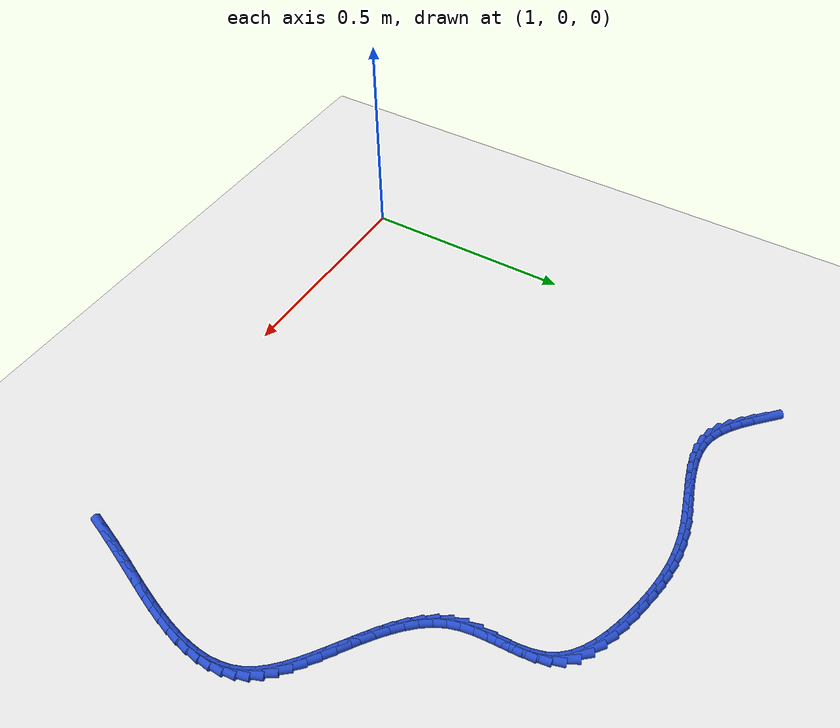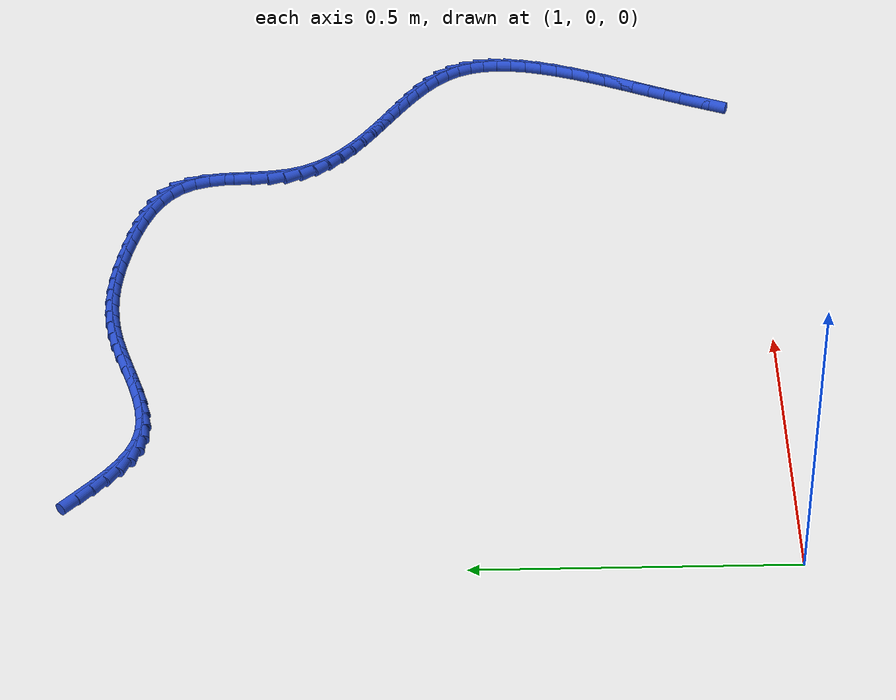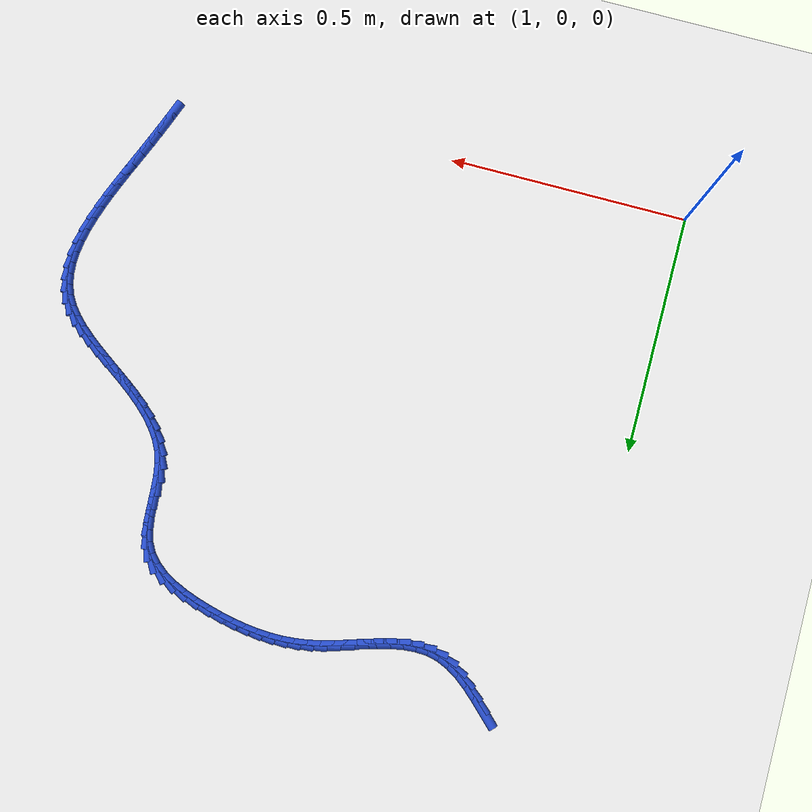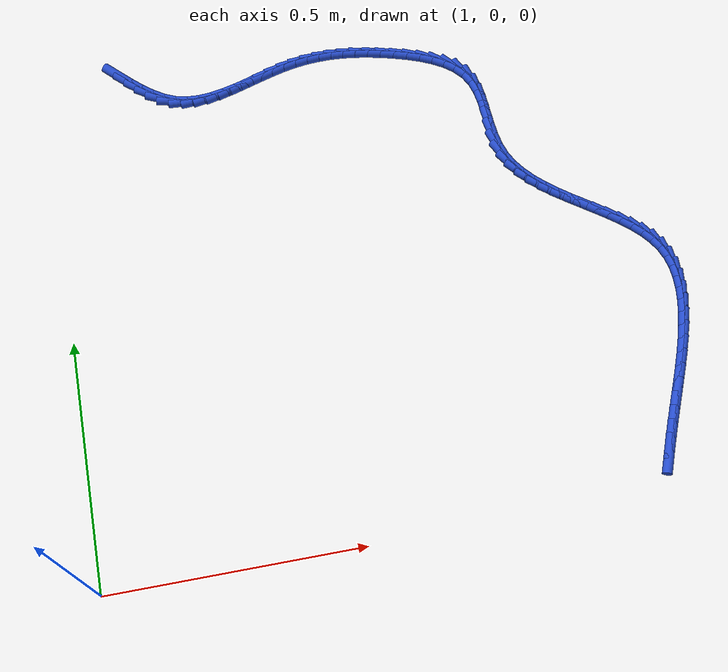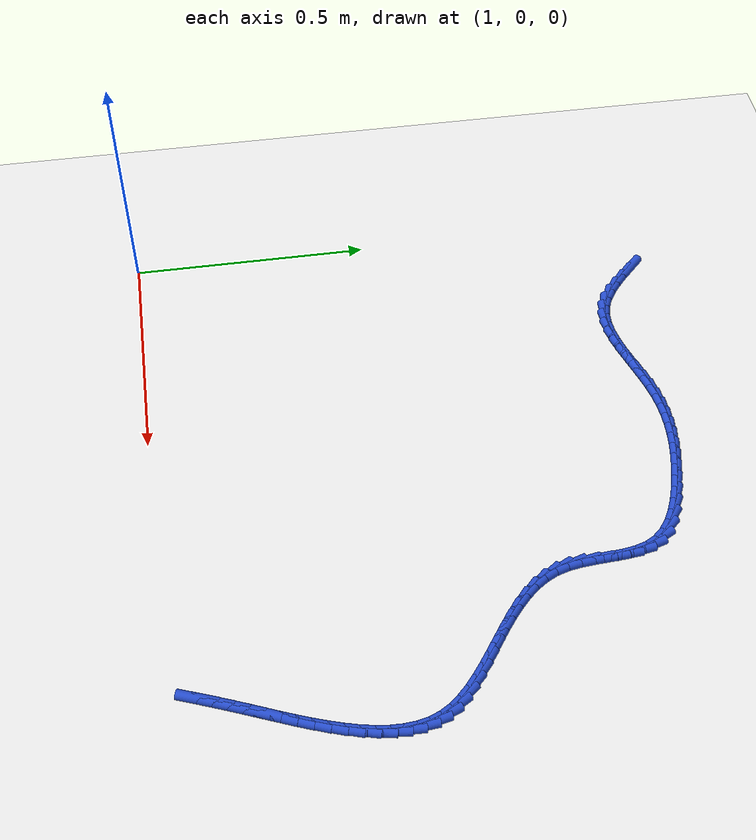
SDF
<sdf version="1.6">
 <world name="default">
  <model name="ground_plane">
   <static>1</static>
   <link name="link">
    <collision name="collision">
     <geometry><plane><normal>0 0 1</normal><size>100 100</size></plane></geometry>
     <surface><friction><ode><mu>100</mu><mu2>50</mu2></ode></friction></surface>
    </collision>
    <visual name="visual">
     <cast_shadows>0</cast_shadows>
     <geometry><plane><normal>0 0 1</normal><size>100 100</size></plane></geometry>
     <material>
      <script><uri>file://media/materials/scripts/gazebo.material</uri><name>Gazebo/WhiteGlow</name></script>
     </material>
    </visual>
   </link>
  </model>
  <model name="line">
   <link name="link_71">
    <pose>1.1596035465163999 1.0799152232436162 0.01 0 1.57 -0.7728892330218509</pose>
    <collision name="collision">
     <geometry><cylinder><radius>0.01</radius><length>0.08</length></cylinder></geometry>
    </collision>
    <visual name="visual">
     <material>
      <script><name>Gazebo/Blue</name><uri>file://media/materials/scripts/gazebo.material</uri></script>
     </material>
     <geometry><cylinder><radius>0.01</radius><length>0.08</length></cylinder></geometry>
    </visual>
   </link>
   <link name="link_72">
    <pose>1.1805757002998476 1.0594612924969344 0.01 0 1.57 -0.7315989505844263</pose>
    <collision name="collision">
     <geometry><cylinder><radius>0.01</radius><length>0.08</length></cylinder></geometry>
    </collision>
    <visual name="visual">
     <material>
      <script><name>Gazebo/Blue</name><uri>file://media/materials/scripts/gazebo.material</uri></script>
     </material>
     <geometry><cylinder><radius>0.01</radius><length>0.08</length></cylinder></geometry>
    </visual>
   </link>
   <link name="link_73">
    <pose>1.2019349450047725 1.040284937569167 0.01 0 1.57 -0.6611452579742935</pose>
    <collision name="collision">
     <geometry><cylinder><radius>0.01</radius><length>0.08</length></cylinder></geometry>
    </collision>
    <visual name="visual">
     <material>
      <script><name>Gazebo/Blue</name><uri>file://media/materials/scripts/gazebo.material</uri></script>
     </material>
     <geometry><cylinder><radius>0.01</radius><length>0.08</length></cylinder></geometry>
    </visual>
   </link>
   <link name="link_74">
    <pose>1.2238110523592876 1.0232666027909951 0.01 0 1.57 -0.5555013474234652</pose>
    <collision name="collision">
     <geometry><cylinder><radius>0.01</radius><length>0.08</length></cylinder></geometry>
    </collision>
    <visual name="visual">
     <material>
      <script><name>Gazebo/Blue</name><uri>file://media/materials/scripts/gazebo.material</uri></script>
     </material>
     <geometry><cylinder><radius>0.01</radius><length>0.08</length></cylinder></geometry>
    </visual>
   </link>
   <link name="link_75">
    <pose>1.2463337940915062 1.0092867324931012 0.01 0 1.57 -0.4076302693548033</pose>
    <collision name="collision">
     <geometry><cylinder><radius>0.01</radius><length>0.08</length></cylinder></geometry>
    </collision>
    <visual name="visual">
     <material>
      <script><name>Gazebo/Blue</name><uri>file://media/materials/scripts/gazebo.material</uri></script>
     </material>
     <geometry><cylinder><radius>0.01</radius><length>0.08</length></cylinder></geometry>
    </visual>
   </link>
   <link name="link_76">
    <pose>1.2696329419295425 0.999225771006166 0.01 0 1.57 -0.22384029612993786</pose>
    <collision name="collision">
     <geometry><cylinder><radius>0.01</radius><length>0.08</length></cylinder></geometry>
    </collision>
    <visual name="visual">
     <material>
      <script><name>Gazebo/Blue</name><uri>file://media/materials/scripts/gazebo.material</uri></script>
     </material>
     <geometry><cylinder><radius>0.01</radius><length>0.08</length></cylinder></geometry>
    </visual>
   </link>
   <link name="link_77">
    <pose>1.2937994920559432 0.993724129242127 0.01 0 1.57 -0.05482034959960243</pose>
    <collision name="collision">
     <geometry><cylinder><radius>0.01</radius><length>0.08</length></cylinder></geometry>
    </collision>
    <visual name="visual">
     <material>
      <script><name>Gazebo/Blue</name><uri>file://media/materials/scripts/gazebo.material</uri></script>
     </material>
     <geometry><cylinder><radius>0.01</radius><length>0.08</length></cylinder></geometry>
    </visual>
   </link>
   <link name="link_78">
    <pose>1.3187520157709394 0.9923548512100507 0.01 0 1.57 0.07947375037839503</pose>
    <collision name="collision">
     <geometry><cylinder><radius>0.01</radius><length>0.08</length></cylinder></geometry>
    </collision>
    <visual name="visual">
     <material>
      <script><name>Gazebo/Blue</name><uri>file://media/materials/scripts/gazebo.material</uri></script>
     </material>
     <geometry><cylinder><radius>0.01</radius><length>0.08</length></cylinder></geometry>
    </visual>
   </link>
   <link name="link_79">
    <pose>1.3443611744847401 0.9943944028947326 0.01 0 1.57 0.17884419373918514</pose>
    <collision name="collision">
     <geometry><cylinder><radius>0.01</radius><length>0.08</length></cylinder></geometry>
    </collision>
    <visual name="visual">
     <material>
      <script><name>Gazebo/Blue</name><uri>file://media/materials/scripts/gazebo.material</uri></script>
     </material>
     <geometry><cylinder><radius>0.01</radius><length>0.08</length></cylinder></geometry>
    </visual>
   </link>
   <link name="link_80">
    <pose>1.370497627713266 0.9991192385547151 0.01 0 1.57 0.24685670047625724</pose>
    <collision name="collision">
     <geometry><cylinder><radius>0.01</radius><length>0.08</length></cylinder></geometry>
    </collision>
    <visual name="visual">
     <material>
      <script><name>Gazebo/Blue</name><uri>file://media/materials/scripts/gazebo.material</uri></script>
     </material>
     <geometry><cylinder><radius>0.01</radius><length>0.08</length></cylinder></geometry>
    </visual>
   </link>
   <link name="link_81">
    <pose>1.3970320349724406 1.0058058124485414 0.01 0 1.57 0.2874767585499627</pose>
    <collision name="collision">
     <geometry><cylinder><radius>0.01</radius><length>0.08</length></cylinder></geometry>
    </collision>
    <visual name="visual">
     <material>
      <script><name>Gazebo/Blue</name><uri>file://media/materials/scripts/gazebo.material</uri></script>
     </material>
     <geometry><cylinder><radius>0.01</radius><length>0.08</length></cylinder></geometry>
    </visual>
   </link>
   <link name="link_82">
    <pose>1.4238350557781856 1.0137305788347548 0.01 0 1.57 0.3035591943710451</pose>
    <collision name="collision">
     <geometry><cylinder><radius>0.01</radius><length>0.08</length></cylinder></geometry>
    </collision>
    <visual name="visual">
     <material>
      <script><name>Gazebo/Blue</name><uri>file://media/materials/scripts/gazebo.material</uri></script>
     </material>
     <geometry><cylinder><radius>0.01</radius><length>0.08</length></cylinder></geometry>
    </visual>
   </link>
   <link name="link_83">
    <pose>1.4507773496464227 1.0221699919718983 0.01 0 1.57 0.29637991633687394</pose>
    <collision name="collision">
     <geometry><cylinder><radius>0.01</radius><length>0.08</length></cylinder></geometry>
    </collision>
    <visual name="visual">
     <material>
      <script><name>Gazebo/Blue</name><uri>file://media/materials/scripts/gazebo.material</uri></script>
     </material>
     <geometry><cylinder><radius>0.01</radius><length>0.08</length></cylinder></geometry>
    </visual>
   </link>
   <link name="link_84">
    <pose>1.4777295760930742 1.0304005061185146 0.01 0 1.57 0.26555913505143963</pose>
    <collision name="collision">
     <geometry><cylinder><radius>0.01</radius><length>0.08</length></cylinder></geometry>
    </collision>
    <visual name="visual">
     <material>
      <script><name>Gazebo/Blue</name><uri>file://media/materials/scripts/gazebo.material</uri></script>
     </material>
     <geometry><cylinder><radius>0.01</radius><length>0.08</length></cylinder></geometry>
    </visual>
   </link>
   <link name="link_85">
    <pose>1.5045623946340627 1.0376985755331474 0.01 0 1.57 0.20981260428648027</pose>
    <collision name="collision">
     <geometry><cylinder><radius>0.01</radius><length>0.08</length></cylinder></geometry>
    </collision>
    <visual name="visual">
     <material>
      <script><name>Gazebo/Blue</name><uri>file://media/materials/scripts/gazebo.material</uri></script>
     </material>
     <geometry><cylinder><radius>0.01</radius><length>0.08</length></cylinder></geometry>
    </visual>
   </link>
   <link name="link_86">
    <pose>1.5311520467309785 1.0433607500310171 0.01 0 1.57 0.14076265798279575</pose>
    <collision name="collision">
     <geometry><cylinder><radius>0.01</radius><length>0.08</length></cylinder></geometry>
    </collision>
    <visual name="visual">
     <material>
      <script><name>Gazebo/Blue</name><uri>file://media/materials/scripts/gazebo.material</uri></script>
     </material>
     <geometry><cylinder><radius>0.01</radius><length>0.08</length></cylinder></geometry>
    </visual>
   </link>
   <link name="link_87">
    <pose>1.557488388645365 1.0470926039480715 0.01 0 1.57 0.07201765194126834</pose>
    <collision name="collision">
     <geometry><cylinder><radius>0.01</radius><length>0.08</length></cylinder></geometry>
    </collision>
    <visual name="visual">
     <material>
      <script><name>Gazebo/Blue</name><uri>file://media/materials/scripts/gazebo.material</uri></script>
     </material>
     <geometry><cylinder><radius>0.01</radius><length>0.08</length></cylinder></geometry>
    </visual>
   </link>
   <link name="link_88">
    <pose>1.5836672454958307 1.0489812099901223 0.01 0 1.57 0.00562803404771542</pose>
    <collision name="collision">
     <geometry><cylinder><radius>0.01</radius><length>0.08</length></cylinder></geometry>
    </collision>
    <visual name="visual">
     <material>
      <script><name>Gazebo/Blue</name><uri>file://media/materials/scripts/gazebo.material</uri></script>
     </material>
     <geometry><cylinder><radius>0.01</radius><length>0.08</length></cylinder></geometry>
    </visual>
   </link>
   <link name="link_89">
    <pose>1.609788492830979 1.0491282228116956 0.01 0 1.57 -0.05699955353170119</pose>
    <collision name="collision">
     <geometry><cylinder><radius>0.01</radius><length>0.08</length></cylinder></geometry>
    </collision>
    <visual name="visual">
     <material>
      <script><name>Gazebo/Blue</name><uri>file://media/materials/scripts/gazebo.material</uri></script>
     </material>
     <geometry><cylinder><radius>0.01</radius><length>0.08</length></cylinder></geometry>
    </visual>
   </link>
   <link name="link_90">
    <pose>1.6359520061994104 1.047635297067317 0.01 0 1.57 -0.1147243577846275</pose>
    <collision name="collision">
     <geometry><cylinder><radius>0.01</radius><length>0.08</length></cylinder></geometry>
    </collision>
    <visual name="visual">
     <material>
      <script><name>Gazebo/Blue</name><uri>file://media/materials/scripts/gazebo.material</uri></script>
     </material>
     <geometry><cylinder><radius>0.01</radius><length>0.08</length></cylinder></geometry>
    </visual>
   </link>
   <link name="link_91">
    <pose>1.6622576611497266 1.044604087411512 0.01 0 1.57 -0.1667325250290208</pose>
    <collision name="collision">
     <geometry><cylinder><radius>0.01</radius><length>0.08</length></cylinder></geometry>
    </collision>
    <visual name="visual">
     <material>
      <script><name>Gazebo/Blue</name><uri>file://media/materials/scripts/gazebo.material</uri></script>
     </material>
     <geometry><cylinder><radius>0.01</radius><length>0.08</length></cylinder></geometry>
    </visual>
   </link>
   <link name="link_92">
    <pose>1.68880533323053 1.0401362484988053 0.01 0 1.57 -0.21254230273241775</pose>
    <collision name="collision">
     <geometry><cylinder><radius>0.01</radius><length>0.08</length></cylinder></geometry>
    </collision>
    <visual name="visual">
     <material>
      <script><name>Gazebo/Blue</name><uri>file://media/materials/scripts/gazebo.material</uri></script>
     </material>
     <geometry><cylinder><radius>0.01</radius><length>0.08</length></cylinder></geometry>
    </visual>
   </link>
   <link name="link_93">
    <pose>1.7156948979904216 1.0343334349837234 0.01 0 1.57 -0.25197572569699056</pose>
    <collision name="collision">
     <geometry><cylinder><radius>0.01</radius><length>0.08</length></cylinder></geometry>
    </collision>
    <visual name="visual">
     <material>
      <script><name>Gazebo/Blue</name><uri>file://media/materials/scripts/gazebo.material</uri></script>
     </material>
     <geometry><cylinder><radius>0.01</radius><length>0.08</length></cylinder></geometry>
    </visual>
   </link>
   <link name="link_94">
    <pose>1.743025850785307 1.0272971487425833 0.01 0 1.57 -0.2905792408238071</pose>
    <collision name="collision">
     <geometry><cylinder><radius>0.01</radius><length>0.08</length></cylinder></geometry>
    </collision>
    <visual name="visual">
     <material>
      <script><name>Gazebo/Blue</name><uri>file://media/materials/scripts/gazebo.material</uri></script>
     </material>
     <geometry><cylinder><radius>0.01</radius><length>0.08</length></cylinder></geometry>
    </visual>
   </link>
   <link name="link_95">
    <pose>1.7706599307767141 1.0190333507176637 0.01 0 1.57 -0.34451122741910034</pose>
    <collision name="collision">
     <geometry><cylinder><radius>0.01</radius><length>0.08</length></cylinder></geometry>
    </collision>
    <visual name="visual">
     <material>
      <script><name>Gazebo/Blue</name><uri>file://media/materials/scripts/gazebo.material</uri></script>
     </material>
     <geometry><cylinder><radius>0.01</radius><length>0.08</length></cylinder></geometry>
    </visual>
   </link>
   <link name="link_96">
    <pose>1.7978153747262338 1.0092894141811874 0.01 0 1.57 -0.42013415618712924</pose>
    <collision name="collision">
     <geometry><cylinder><radius>0.01</radius><length>0.08</length></cylinder></geometry>
    </collision>
    <visual name="visual">
     <material>
      <script><name>Gazebo/Blue</name><uri>file://media/materials/scripts/gazebo.material</uri></script>
     </material>
     <geometry><cylinder><radius>0.01</radius><length>0.08</length></cylinder></geometry>
    </visual>
   </link>
   <link name="link_97">
    <pose>1.8236026139418549 0.9977693914153236 0.01 0 1.57 -0.5238318553023523</pose>
    <collision name="collision">
     <geometry><cylinder><radius>0.01</radius><length>0.08</length></cylinder></geometry>
    </collision>
    <visual name="visual">
     <material>
      <script><name>Gazebo/Blue</name><uri>file://media/materials/scripts/gazebo.material</uri></script>
     </material>
     <geometry><cylinder><radius>0.01</radius><length>0.08</length></cylinder></geometry>
    </visual>
   </link>
   <link name="link_98">
    <pose>1.847132079731566 0.9841773347022414 0.01 0 1.57 -0.6643142024586263</pose>
    <collision name="collision">
     <geometry><cylinder><radius>0.01</radius><length>0.08</length></cylinder></geometry>
    </collision>
    <visual name="visual">
     <material>
      <script><name>Gazebo/Blue</name><uri>file://media/materials/scripts/gazebo.material</uri></script>
     </material>
     <geometry><cylinder><radius>0.01</radius><length>0.08</length></cylinder></geometry>
    </visual>
   </link>
   <link name="link_99">
    <pose>1.8675142034033558 0.96821729632411 0.01 0 1.57 -0.8504708223785802</pose>
    <collision name="collision">
     <geometry><cylinder><radius>0.01</radius><length>0.08</length></cylinder></geometry>
    </collision>
    <visual name="visual">
     <material>
      <script><name>Gazebo/Blue</name><uri>file://media/materials/scripts/gazebo.material</uri></script>
     </material>
     <geometry><cylinder><radius>0.01</radius><length>0.08</length></cylinder></geometry>
    </visual>
   </link>
   <link name="link_100">
    <pose>1.8838594162652127 0.9495933285630989 0.01 0 1.57 -1.0804134193918378</pose>
    <collision name="collision">
     <geometry><cylinder><radius>0.01</radius><length>0.08</length></cylinder></geometry>
    </collision>
    <visual name="visual">
     <material>
      <script><name>Gazebo/Blue</name><uri>file://media/materials/scripts/gazebo.material</uri></script>
     </material>
     <geometry><cylinder><radius>0.01</radius><length>0.08</length></cylinder></geometry>
    </visual>
   </link>
   <link name="link_101">
    <pose>1.8953620985737634 0.9280478870614517 0.01 0 1.57 -1.2867379276329156</pose>
    <collision name="collision">
     <geometry><cylinder><radius>0.01</radius><length>0.08</length></cylinder></geometry>
    </collision>
    <visual name="visual">
     <material>
      <script><name>Gazebo/Blue</name><uri>file://media/materials/scripts/gazebo.material</uri></script>
     </material>
     <geometry><cylinder><radius>0.01</radius><length>0.08</length></cylinder></geometry>
    </visual>
   </link>
   <link name="link_102">
    <pose>1.9024197983233595 0.9038738296357295 0.01 0 1.57 -1.422079471506025</pose>
    <collision name="collision">
     <geometry><cylinder><radius>0.01</radius><length>0.08</length></cylinder></geometry>
    </collision>
    <visual name="visual">
     <material>
      <script><name>Gazebo/Blue</name><uri>file://media/materials/scripts/gazebo.material</uri></script>
     </material>
     <geometry><cylinder><radius>0.01</radius><length>0.08</length></cylinder></geometry>
    </visual>
   </link>
   <link name="link_103">
    <pose>1.906329905370746 0.8777756565543904 0.01 0 1.57 -1.4947171324096313</pose>
    <collision name="collision">
     <geometry><cylinder><radius>0.01</radius><length>0.08</length></cylinder></geometry>
    </collision>
    <visual name="visual">
     <material>
      <script><name>Gazebo/Blue</name><uri>file://media/materials/scripts/gazebo.material</uri></script>
     </material>
     <geometry><cylinder><radius>0.01</radius><length>0.08</length></cylinder></geometry>
    </visual>
   </link>
   <link name="link_104">
    <pose>1.9084114840088762 0.8504677832925953 0.01 0 1.57 -1.514312015336763</pose>
    <collision name="collision">
     <geometry><cylinder><radius>0.01</radius><length>0.08</length></cylinder></geometry>
    </collision>
    <visual name="visual">
     <material>
      <script><name>Gazebo/Blue</name><uri>file://media/materials/scripts/gazebo.material</uri></script>
     </material>
     <geometry><cylinder><radius>0.01</radius><length>0.08</length></cylinder></geometry>
    </visual>
   </link>
   <link name="link_105">
    <pose>1.9099835985307065 0.8226646253255065 0.01 0 1.57 -1.4846659647770744</pose>
    <collision name="collision">
     <geometry><cylinder><radius>0.01</radius><length>0.08</length></cylinder></geometry>
    </collision>
    <visual name="visual">
     <material>
      <script><name>Gazebo/Blue</name><uri>file://media/materials/scripts/gazebo.material</uri></script>
     </material>
     <geometry><cylinder><radius>0.01</radius><length>0.08</length></cylinder></geometry>
    </visual>
   </link>
   <link name="link_106">
    <pose>1.9123653132291922 0.7950805981282855 0.01 0 1.57 -1.4031430266808531</pose>
    <collision name="collision">
     <geometry><cylinder><radius>0.01</radius><length>0.08</length></cylinder></geometry>
    </collision>
    <visual name="visual">
     <material>
      <script><name>Gazebo/Blue</name><uri>file://media/materials/scripts/gazebo.material</uri></script>
     </material>
     <geometry><cylinder><radius>0.01</radius><length>0.08</length></cylinder></geometry>
    </visual>
   </link>
   <link name="link_107">
    <pose>1.9168756923972887 0.7684301171760936 0.01 0 1.57 -1.2641827405812327</pose>
    <collision name="collision">
     <geometry><cylinder><radius>0.01</radius><length>0.08</length></cylinder></geometry>
    </collision>
    <visual name="visual">
     <material>
      <script><name>Gazebo/Blue</name><uri>file://media/materials/scripts/gazebo.material</uri></script>
     </material>
     <geometry><cylinder><radius>0.01</radius><length>0.08</length></cylinder></geometry>
    </visual>
   </link>
   <link name="link_108">
    <pose>1.9247973321147438 0.7434089590438274 0.01 0 1.57 -1.1016179544638378</pose>
    <collision name="collision">
     <geometry><cylinder><radius>0.01</radius><length>0.08</length></cylinder></geometry>
    </collision>
    <visual name="visual">
     <material>
      <script><name>Gazebo/Blue</name><uri>file://media/materials/scripts/gazebo.material</uri></script>
     </material>
     <geometry><cylinder><radius>0.01</radius><length>0.08</length></cylinder></geometry>
    </visual>
   </link>
   <link name="link_109">
    <pose>1.9365311446853504 0.7202622718132407 0.01 0 1.57 -0.9601474691924475</pose>
    <collision name="collision">
     <geometry><cylinder><radius>0.01</radius><length>0.08</length></cylinder></geometry>
    </collision>
    <visual name="visual">
     <material>
      <script><name>Gazebo/Blue</name><uri>file://media/materials/scripts/gazebo.material</uri></script>
     </material>
     <geometry><cylinder><radius>0.01</radius><length>0.08</length></cylinder></geometry>
    </visual>
   </link>
   <link name="link_110">
    <pose>1.9515718367405872 0.6987720419340707 0.01 0 1.57 -0.8453157313076692</pose>
    <collision name="collision">
     <geometry><cylinder><radius>0.01</radius><length>0.08</length></cylinder></geometry>
    </collision>
    <visual name="visual">
     <material>
      <script><name>Gazebo/Blue</name><uri>file://media/materials/scripts/gazebo.material</uri></script>
     </material>
     <geometry><cylinder><radius>0.01</radius><length>0.08</length></cylinder></geometry>
    </visual>
   </link>
   <link name="link_111">
    <pose>1.9693727411624147 0.678699109736654 0.01 0 1.57 -0.7566300229954835</pose>
    <collision name="collision">
     <geometry><cylinder><radius>0.01</radius><length>0.08</length></cylinder></geometry>
    </collision>
    <visual name="visual">
     <material>
      <script><name>Gazebo/Blue</name><uri>file://media/materials/scripts/gazebo.material</uri></script>
     </material>
     <geometry><cylinder><radius>0.01</radius><length>0.08</length></cylinder></geometry>
    </visual>
   </link>
   <link name="link_112">
    <pose>1.9893871908327911 0.6598043155513253 0.01 0 1.57 -0.6916830577405566</pose>
    <collision name="collision">
     <geometry><cylinder><radius>0.01</radius><length>0.08</length></cylinder></geometry>
    </collision>
    <visual name="visual">
     <material>
      <script><name>Gazebo/Blue</name><uri>file://media/materials/scripts/gazebo.material</uri></script>
     </material>
     <geometry><cylinder><radius>0.01</radius><length>0.08</length></cylinder></geometry>
    </visual>
   </link>
   <link name="link_113">
    <pose>2.0110685186336763 0.641848499708421 0.01 0 1.57 -0.6478331393040518</pose>
    <collision name="collision">
     <geometry><cylinder><radius>0.01</radius><length>0.08</length></cylinder></geometry>
    </collision>
    <visual name="visual">
     <material>
      <script><name>Gazebo/Blue</name><uri>file://media/materials/scripts/gazebo.material</uri></script>
     </material>
     <geometry><cylinder><radius>0.01</radius><length>0.08</length></cylinder></geometry>
    </visual>
   </link>
   <link name="link_114">
    <pose>2.0338700574470305 0.6245925025382759 0.01 0 1.57 -0.6230440961843997</pose>
    <collision name="collision">
     <geometry><cylinder><radius>0.01</radius><length>0.08</length></cylinder></geometry>
    </collision>
    <visual name="visual">
     <material>
      <script><name>Gazebo/Blue</name><uri>file://media/materials/scripts/gazebo.material</uri></script>
     </material>
     <geometry><cylinder><radius>0.01</radius><length>0.08</length></cylinder></geometry>
    </visual>
   </link>
   <link name="link_115">
    <pose>2.0572451401548126 0.6077971643712259 0.01 0 1.57 -0.6162243987928483</pose>
    <collision name="collision">
     <geometry><cylinder><radius>0.01</radius><length>0.08</length></cylinder></geometry>
    </collision>
    <visual name="visual">
     <material>
      <script><name>Gazebo/Blue</name><uri>file://media/materials/scripts/gazebo.material</uri></script>
     </material>
     <geometry><cylinder><radius>0.01</radius><length>0.08</length></cylinder></geometry>
    </visual>
   </link>
   <link name="link_116">
    <pose>2.0806470996389823 0.5912233255376065 0.01 0 1.57 -0.6273633766358029</pose>
    <collision name="collision">
     <geometry><cylinder><radius>0.01</radius><length>0.08</length></cylinder></geometry>
    </collision>
    <visual name="visual">
     <material>
      <script><name>Gazebo/Blue</name><uri>file://media/materials/scripts/gazebo.material</uri></script>
     </material>
     <geometry><cylinder><radius>0.01</radius><length>0.08</length></cylinder></geometry>
    </visual>
   </link>
   <link name="link_117">
    <pose>2.103529268781499 0.5746318263677533 0.01 0 1.57 -0.6576223140781559</pose>
    <collision name="collision">
     <geometry><cylinder><radius>0.01</radius><length>0.08</length></cylinder></geometry>
    </collision>
    <visual name="visual">
     <material>
      <script><name>Gazebo/Blue</name><uri>file://media/materials/scripts/gazebo.material</uri></script>
     </material>
     <geometry><cylinder><radius>0.01</radius><length>0.08</length></cylinder></geometry>
    </visual>
   </link>
   <link name="link_118">
    <pose>2.1253449804643223 0.557783507192002 0.01 0 1.57 -0.7094188670215342</pose>
    <collision name="collision">
     <geometry><cylinder><radius>0.01</radius><length>0.08</length></cylinder></geometry>
    </collision>
    <visual name="visual">
     <material>
      <script><name>Gazebo/Blue</name><uri>file://media/materials/scripts/gazebo.material</uri></script>
     </material>
     <geometry><cylinder><radius>0.01</radius><length>0.08</length></cylinder></geometry>
    </visual>
   </link>
   <link name="link_119">
    <pose>2.1455475675694116 0.5404392083406879 0.01 0 1.57 -0.7864125739418433</pose>
    <collision name="collision">
     <geometry><cylinder><radius>0.01</radius><length>0.08</length></cylinder></geometry>
    </collision>
    <visual name="visual">
     <material>
      <script><name>Gazebo/Blue</name><uri>file://media/materials/scripts/gazebo.material</uri></script>
     </material>
     <geometry><cylinder><radius>0.01</radius><length>0.08</length></cylinder></geometry>
    </visual>
   </link>
   <link name="link_120">
    <pose>2.1635903629787268 0.522359770144147 0.01 0 1.57 -0.8930752381389424</pose>
    <collision name="collision">
     <geometry><cylinder><radius>0.01</radius><length>0.08</length></cylinder></geometry>
    </collision>
    <visual name="visual">
     <material>
      <script><name>Gazebo/Blue</name><uri>file://media/materials/scripts/gazebo.material</uri></script>
     </material>
     <geometry><cylinder><radius>0.01</radius><length>0.08</length></cylinder></geometry>
    </visual>
   </link>
   <link name="link_121">
    <pose>2.1789266995742267 0.5033060329327145 0.01 0 1.57 -1.0331784167026243</pose>
    <collision name="collision">
     <geometry><cylinder><radius>0.01</radius><length>0.08</length></cylinder></geometry>
    </collision>
    <visual name="visual">
     <material>
      <script><name>Gazebo/Blue</name><uri>file://media/materials/scripts/gazebo.material</uri></script>
     </material>
     <geometry><cylinder><radius>0.01</radius><length>0.08</length></cylinder></geometry>
    </visual>
   </link>
   <link name="link_122">
    <pose>2.1910099220442505 0.48303884230544847 0.01 0 1.57 -1.1986897253249962</pose>
    <collision name="collision">
     <geometry><cylinder><radius>0.01</radius><length>0.08</length></cylinder></geometry>
    </collision>
    <visual name="visual">
     <material>
      <script><name>Gazebo/Blue</name><uri>file://media/materials/scripts/gazebo.material</uri></script>
     </material>
     <geometry><cylinder><radius>0.01</radius><length>0.08</length></cylinder></geometry>
    </visual>
   </link>
   <link name="link_123">
    <pose>2.1994582046530877 0.46139260081483735 0.01 0 1.57 -1.3556818899013536</pose>
    <collision name="collision">
     <geometry><cylinder><radius>0.01</radius><length>0.08</length></cylinder></geometry>
    </collision>
    <visual name="visual">
     <material>
      <script><name>Gazebo/Blue</name><uri>file://media/materials/scripts/gazebo.material</uri></script>
     </material>
     <geometry><cylinder><radius>0.01</radius><length>0.08</length></cylinder></geometry>
    </visual>
   </link>
   <link name="link_124">
    <pose>2.204468833893533 0.4384601460119257 0.01 0 1.57 -1.4921286356867505</pose>
    <collision name="collision">
     <geometry><cylinder><radius>0.01</radius><length>0.08</length></cylinder></geometry>
    </collision>
    <visual name="visual">
     <material>
      <script><name>Gazebo/Blue</name><uri>file://media/materials/scripts/gazebo.material</uri></script>
     </material>
     <geometry><cylinder><radius>0.01</radius><length>0.08</length></cylinder></geometry>
    </visual>
   </link>
   <link name="link_125">
    <pose>2.206366210426753 0.41439104149895006 0.01 0 1.57 1.535232276056082</pose>
    <collision name="collision">
     <geometry><cylinder><radius>0.01</radius><length>0.08</length></cylinder></geometry>
    </collision>
    <visual name="visual">
     <material>
      <script><name>Gazebo/Blue</name><uri>file://media/materials/scripts/gazebo.material</uri></script>
     </material>
     <geometry><cylinder><radius>0.01</radius><length>0.08</length></cylinder></geometry>
    </visual>
   </link>
   <link name="link_126">
    <pose>2.205474734913915 0.38933485087814707 0.01 0 1.57 1.441910833364434</pose>
    <collision name="collision">
     <geometry><cylinder><radius>0.01</radius><length>0.08</length></cylinder></geometry>
    </collision>
    <visual name="visual">
     <material>
      <script><name>Gazebo/Blue</name><uri>file://media/materials/scripts/gazebo.material</uri></script>
     </material>
     <geometry><cylinder><radius>0.01</radius><length>0.08</length></cylinder></geometry>
    </visual>
   </link>
   <link name="link_127">
    <pose>2.2021188080161873 0.3634411377517539 0.01 0 1.57 1.3669110608989146</pose>
    <collision name="collision">
     <geometry><cylinder><radius>0.01</radius><length>0.08</length></cylinder></geometry>
    </collision>
    <visual name="visual">
     <material>
      <script><name>Gazebo/Blue</name><uri>file://media/materials/scripts/gazebo.material</uri></script>
     </material>
     <geometry><cylinder><radius>0.01</radius><length>0.08</length></cylinder></geometry>
    </visual>
   </link>
   <link name="link_128">
    <pose>2.1966228303947357 0.3368594657220065 0.01 0 1.57 1.3074553735497352</pose>
    <collision name="collision">
     <geometry><cylinder><radius>0.01</radius><length>0.08</length></cylinder></geometry>
    </collision>
    <visual name="visual">
     <material>
      <script><name>Gazebo/Blue</name><uri>file://media/materials/scripts/gazebo.material</uri></script>
     </material>
     <geometry><cylinder><radius>0.01</radius><length>0.08</length></cylinder></geometry>
    </visual>
   </link>
   <link name="link_129">
    <pose>2.1893112027107278 0.3097393983911419 0.01 0 1.57 1.2610924129174548</pose>
    <collision name="collision">
     <geometry><cylinder><radius>0.01</radius><length>0.08</length></cylinder></geometry>
    </collision>
    <visual name="visual">
     <material>
      <script><name>Gazebo/Blue</name><uri>file://media/materials/scripts/gazebo.material</uri></script>
     </material>
     <geometry><cylinder><radius>0.01</radius><length>0.08</length></cylinder></geometry>
    </visual>
   </link>
   <link name="link_130">
    <pose>2.1805083256253313 0.28223049936139655 0.01 0 1.57 1.2258666570952501</pose>
    <collision name="collision">
     <geometry><cylinder><radius>0.01</radius><length>0.08</length></cylinder></geometry>
    </collision>
    <visual name="visual">
     <material>
      <script><name>Gazebo/Blue</name><uri>file://media/materials/scripts/gazebo.material</uri></script>
     </material>
     <geometry><cylinder><radius>0.01</radius><length>0.08</length></cylinder></geometry>
    </visual>
   </link>
   <link name="link_131">
    <pose>2.170538599799713 0.2544823322350073 0.01 0 1.57 1.200331503238435</pose>
    <collision name="collision">
     <geometry><cylinder><radius>0.01</radius><length>0.08</length></cylinder></geometry>
    </collision>
    <visual name="visual">
     <material>
      <script><name>Gazebo/Blue</name><uri>file://media/materials/scripts/gazebo.material</uri></script>
     </material>
     <geometry><cylinder><radius>0.01</radius><length>0.08</length></cylinder></geometry>
    </visual>
   </link>
   <link name="link_132">
    <pose>2.15972642589504 0.22664446061421073 0.01 0 1.57 1.1835114823960466</pose>
    <collision name="collision">
     <geometry><cylinder><radius>0.01</radius><length>0.08</length></cylinder></geometry>
    </collision>
    <visual name="visual">
     <material>
      <script><name>Gazebo/Blue</name><uri>file://media/materials/scripts/gazebo.material</uri></script>
     </material>
     <geometry><cylinder><radius>0.01</radius><length>0.08</length></cylinder></geometry>
    </visual>
   </link>
   <link name="link_133">
    <pose>2.1483962045724807 0.1988664481012434 0.01 0 1.57 1.174863550768212</pose>
    <collision name="collision">
     <geometry><cylinder><radius>0.01</radius><length>0.08</length></cylinder></geometry>
    </collision>
    <visual name="visual">
     <material>
      <script><name>Gazebo/Blue</name><uri>file://media/materials/scripts/gazebo.material</uri></script>
     </material>
     <geometry><cylinder><radius>0.01</radius><length>0.08</length></cylinder></geometry>
    </visual>
   </link>
   <link name="link_134">
    <pose>2.1368723364932003 0.17129785829834235 0.01 0 1.57 1.1742577627528583</pose>
    <collision name="collision">
     <geometry><cylinder><radius>0.01</radius><length>0.08</length></cylinder></geometry>
    </collision>
    <visual name="visual">
     <material>
      <script><name>Gazebo/Blue</name><uri>file://media/materials/scripts/gazebo.material</uri></script>
     </material>
     <geometry><cylinder><radius>0.01</radius><length>0.08</length></cylinder></geometry>
    </visual>
   </link>
   <link name="link_135">
    <pose>2.125479136903561 0.14408820206540152 0.01 0 1.57 1.1802067833246979</pose>
    <collision name="collision">
     <geometry><cylinder><radius>0.01</radius><length>0.08</length></cylinder></geometry>
    </collision>
    <visual name="visual">
     <material>
      <script><name>Gazebo/Blue</name><uri>file://media/materials/scripts/gazebo.material</uri></script>
     </material>
     <geometry><cylinder><radius>0.01</radius><length>0.08</length></cylinder></geometry>
    </visual>
   </link>
   <link name="link_136">
    <pose>2.1144660246959526 0.11734074290459225 0.01 0 1.57 1.1879815747536187</pose>
    <collision name="collision">
     <geometry><cylinder><radius>0.01</radius><length>0.08</length></cylinder></geometry>
    </collision>
    <visual name="visual">
     <material>
      <script><name>Gazebo/Blue</name><uri>file://media/materials/scripts/gazebo.material</uri></script>
     </material>
     <geometry><cylinder><radius>0.01</radius><length>0.08</length></cylinder></geometry>
    </visual>
   </link>
   <link name="link_137">
    <pose>2.1038703124047324 0.09102777187289697 0.01 0 1.57 1.1967363896773018</pose>
    <collision name="collision">
     <geometry><cylinder><radius>0.01</radius><length>0.08</length></cylinder></geometry>
    </collision>
    <visual name="visual">
     <material>
      <script><name>Gazebo/Blue</name><uri>file://media/materials/scripts/gazebo.material</uri></script>
     </material>
     <geometry><cylinder><radius>0.01</radius><length>0.08</length></cylinder></geometry>
    </visual>
   </link>
   <link name="link_138">
    <pose>2.0936920252227966 0.06509855566191959 0.01 0 1.57 1.2064794648507904</pose>
    <collision name="collision">
     <geometry><cylinder><radius>0.01</radius><length>0.08</length></cylinder></geometry>
    </collision>
    <visual name="visual">
     <material>
      <script><name>Gazebo/Blue</name><uri>file://media/materials/scripts/gazebo.material</uri></script>
     </material>
     <geometry><cylinder><radius>0.01</radius><length>0.08</length></cylinder></geometry>
    </visual>
   </link>
  </model>
 </world>
</sdf>
